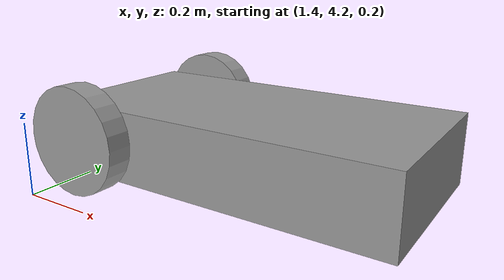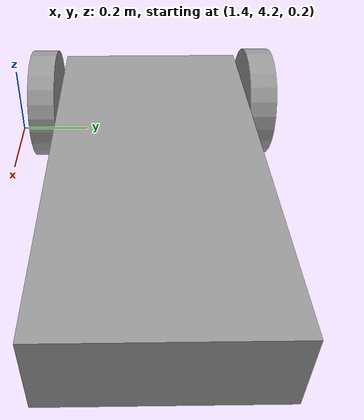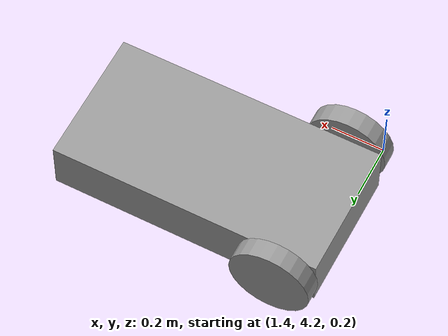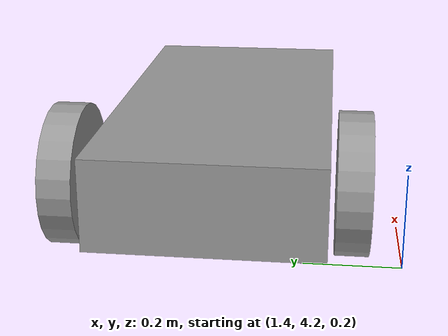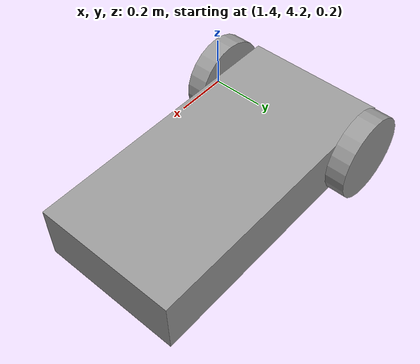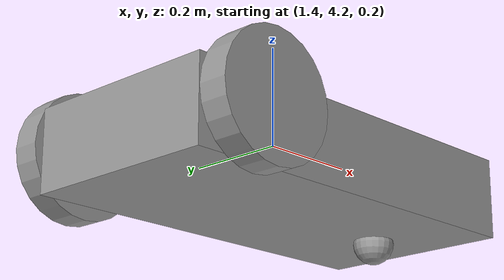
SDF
<?xml version='1.0'?>
<sdf version='1.6'>
  <model name='RobotBase'>
    <link name='link'>
      <inertial>
        <mass>1</mass>
        <inertia>
          <ixx>0.166667</ixx>
          <ixy>0</ixy>
          <ixz>0</ixz>
          <iyy>0.166667</iyy>
          <iyz>0</iyz>
          <izz>0.166667</izz>
        </inertia>
        <pose frame=''>0 0 0 0 -0 0</pose>
      </inertial>
      <self_collide>0</self_collide>
      <enable_wind>0</enable_wind>
      <kinematic>0</kinematic>
      <pose frame=''>1.84831 4.60038 0.325533 0 -0 0</pose>
      <gravity>1</gravity>
      <visual name='visual'>
        <geometry>
          <box>
            <size>1 0.5 0.2</size>
          </box>
        </geometry>
        <material>
          <script>
            <name>Gazebo/Grey</name>
            <uri>file://media/materials/scripts/gazebo.material</uri>
          </script>
          <shader type='vertex'>
            <normal_map>__default__</normal_map>
          </shader>
          <ambient>0.3 0.3 0.3 1</ambient>
          <diffuse>0.7 0.7 0.7 1</diffuse>
          <specular>0 0.91 1 1</specular>
          <emissive>0 0 0 1</emissive>
        </material>
        <pose frame=''>0 0 0 0 -0 0</pose>
        <transparency>0</transparency>
        <cast_shadows>1</cast_shadows>
      </visual>
      <collision name='collision'>
        <laser_retro>0</laser_retro>
        <max_contacts>10</max_contacts>
        <pose frame=''>0 0 0 0 -0 0</pose>
        <geometry>
          <box>
            <size>1.01 0.51 0.21</size>
          </box>
        </geometry>
        <surface>
          <friction>
            <ode>
              <mu>1</mu>
              <mu2>1</mu2>
              <fdir1>0 0 0</fdir1>
              <slip1>0</slip1>
              <slip2>0</slip2>
            </ode>
            <torsional>
              <coefficient>1</coefficient>
              <patch_radius>0</patch_radius>
              <surface_radius>0</surface_radius>
              <use_patch_radius>1</use_patch_radius>
              <ode>
                <slip>0</slip>
              </ode>
            </torsional>
          </friction>
          <bounce>
            <restitution_coefficient>0</restitution_coefficient>
            <threshold>1e+06</threshold>
          </bounce>
          <contact>
            <collide_without_contact>0</collide_without_contact>
            <collide_without_contact_bitmask>1</collide_without_contact_bitmask>
            <collide_bitmask>1</collide_bitmask>
            <ode>
              <soft_cfm>0</soft_cfm>
              <soft_erp>0.2</soft_erp>
              <kp>1e+13</kp>
              <kd>1</kd>
              <max_vel>0.01</max_vel>
              <min_depth>0</min_depth>
            </ode>
            <bullet>
              <split_impulse>1</split_impulse>
              <split_impulse_penetration_threshold>-0.01</split_impulse_penetration_threshold>
              <soft_cfm>0</soft_cfm>
              <soft_erp>0.2</soft_erp>
              <kp>1e+13</kp>
              <kd>1</kd>
            </bullet>
          </contact>
        </surface>
      </collision>
    </link>
    <link name='link_1_clone'>
      <inertial>
        <mass>1</mass>
        <inertia>
          <ixx>0.145833</ixx>
          <ixy>0</ixy>
          <ixz>0</ixz>
          <iyy>0.145833</iyy>
          <iyz>0</iyz>
          <izz>0.125</izz>
        </inertia>
        <pose frame=''>0 0 0 1.5707 -0 0</pose>
      </inertial>
      <pose frame=''>1.48331 4.89441 0.345528 1.5707 -0 0</pose>
      <gravity>1</gravity>
      <self_collide>0</self_collide>
      <kinematic>0</kinematic>
      <enable_wind>0</enable_wind>
      <visual name='visual'>
        <pose frame=''>0 0 0 0 -0 0</pose>
        <geometry>
          <cylinder>
            <radius>0.15</radius>
            <length>0.07</length>
          </cylinder>
        </geometry>
        <material>
          <lighting>1</lighting>
          <script>
            <uri>file://media/materials/scripts/gazebo.material</uri>
            <name>Gazebo/Grey</name>
          </script>
          <shader type='vertex'>
            <normal_map>__default__</normal_map>
          </shader>
          <ambient>0.3 0.3 0.3 1</ambient>
          <diffuse>0.7 0.7 0.7 1</diffuse>
          <specular>0.01 0.01 0.01 1</specular>
          <emissive>0 0 0 1</emissive>
        </material>
        <transparency>0</transparency>
        <cast_shadows>1</cast_shadows>
      </visual>
      <collision name='collision'>
        <laser_retro>0</laser_retro>
        <max_contacts>10</max_contacts>
        <pose frame=''>0 0 0 0 -0 0</pose>
        <geometry>
          <cylinder>
            <radius>0.5</radius>
            <length>1</length>
          </cylinder>
        </geometry>
        <surface>
          <friction>
            <ode>
              <mu>1</mu>
              <mu2>1</mu2>
              <fdir1>0 0 0</fdir1>
              <slip1>0</slip1>
              <slip2>0</slip2>
            </ode>
            <torsional>
              <coefficient>1</coefficient>
              <patch_radius>0</patch_radius>
              <surface_radius>0</surface_radius>
              <use_patch_radius>1</use_patch_radius>
              <ode>
                <slip>0</slip>
              </ode>
            </torsional>
          </friction>
          <bounce>
            <restitution_coefficient>0</restitution_coefficient>
            <threshold>1e+06</threshold>
          </bounce>
          <contact>
            <collide_without_contact>0</collide_without_contact>
            <collide_without_contact_bitmask>1</collide_without_contact_bitmask>
            <collide_bitmask>1</collide_bitmask>
            <ode>
              <soft_cfm>0</soft_cfm>
              <soft_erp>0.2</soft_erp>
              <kp>1e+13</kp>
              <kd>1</kd>
              <max_vel>0.01</max_vel>
              <min_depth>0</min_depth>
            </ode>
            <bullet>
              <split_impulse>1</split_impulse>
              <split_impulse_penetration_threshold>-0.01</split_impulse_penetration_threshold>
              <soft_cfm>0</soft_cfm>
              <soft_erp>0.2</soft_erp>
              <kp>1e+13</kp>
              <kd>1</kd>
            </bullet>
          </contact>
        </surface>
      </collision>
    </link>
    <link name='link_1_clone_clone'>
      <inertial>
        <mass>1</mass>
        <inertia>
          <ixx>0.145833</ixx>
          <ixy>0</ixy>
          <ixz>0</ixz>
          <iyy>0.145833</iyy>
          <iyz>0</iyz>
          <izz>0.125</izz>
        </inertia>
        <pose frame=''>0 0 0 1.5707 -0 0</pose>
      </inertial>
      <pose frame=''>1.48728 4.30211 0.345533 1.5707 -0 0</pose>
      <gravity>1</gravity>
      <self_collide>0</self_collide>
      <kinematic>0</kinematic>
      <enable_wind>0</enable_wind>
      <visual name='visual'>
        <pose frame=''>0 0 0 0 -0 0</pose>
        <geometry>
          <cylinder>
            <radius>0.15</radius>
            <length>0.07</length>
          </cylinder>
        </geometry>
        <material>
          <lighting>1</lighting>
          <script>
            <uri>file://media/materials/scripts/gazebo.material</uri>
            <name>Gazebo/Grey</name>
          </script>
          <shader type='vertex'>
            <normal_map>__default__</normal_map>
          </shader>
          <ambient>0.3 0.3 0.3 1</ambient>
          <diffuse>0.7 0.7 0.7 1</diffuse>
          <specular>0.01 0.01 0.01 1</specular>
          <emissive>0 0 0 1</emissive>
        </material>
        <transparency>0</transparency>
        <cast_shadows>1</cast_shadows>
      </visual>
      <collision name='collision'>
        <laser_retro>0</laser_retro>
        <max_contacts>10</max_contacts>
        <pose frame=''>0 0 0 0 -0 0</pose>
        <geometry>
          <cylinder>
            <radius>0.5</radius>
            <length>1</length>
          </cylinder>
        </geometry>
        <surface>
          <friction>
            <ode>
              <mu>1</mu>
              <mu2>1</mu2>
              <fdir1>0 0 0</fdir1>
              <slip1>0</slip1>
              <slip2>0</slip2>
            </ode>
            <torsional>
              <coefficient>1</coefficient>
              <patch_radius>0</patch_radius>
              <surface_radius>0</surface_radius>
              <use_patch_radius>1</use_patch_radius>
              <ode>
                <slip>0</slip>
              </ode>
            </torsional>
          </friction>
          <bounce>
            <restitution_coefficient>0</restitution_coefficient>
            <threshold>1e+06</threshold>
          </bounce>
          <contact>
            <collide_without_contact>0</collide_without_contact>
            <collide_without_contact_bitmask>1</collide_without_contact_bitmask>
            <collide_bitmask>1</collide_bitmask>
            <ode>
              <soft_cfm>0</soft_cfm>
              <soft_erp>0.2</soft_erp>
              <kp>1e+13</kp>
              <kd>1</kd>
              <max_vel>0.01</max_vel>
              <min_depth>0</min_depth>
            </ode>
            <bullet>
              <split_impulse>1</split_impulse>
              <split_impulse_penetration_threshold>-0.01</split_impulse_penetration_threshold>
              <soft_cfm>0</soft_cfm>
              <soft_erp>0.2</soft_erp>
              <kp>1e+13</kp>
              <kd>1</kd>
            </bullet>
          </contact>
        </surface>
      </collision>
    </link>
    <link name='link_2'>
      <inertial>
        <mass>1</mass>
        <inertia>
          <ixx>0.1</ixx>
          <ixy>0</ixy>
          <ixz>0</ixz>
          <iyy>0.1</iyy>
          <iyz>0</iyz>
          <izz>0.1</izz>
        </inertia>
        <pose frame=''>0 0 0 0 -0 0</pose>
      </inertial>
      <pose frame=''>2.16985 4.58418 0.216026 0 -0 0</pose>
      <gravity>1</gravity>
      <self_collide>0</self_collide>
      <kinematic>0</kinematic>
      <enable_wind>0</enable_wind>
      <visual name='visual'>
        <pose frame=''>0 0 0 0 -0 0</pose>
        <geometry>
          <sphere>
            <radius>0.05</radius>
          </sphere>
        </geometry>
        <material>
          <lighting>1</lighting>
          <script>
            <uri>file://media/materials/scripts/gazebo.material</uri>
            <name>Gazebo/Grey</name>
          </script>
          <shader type='vertex'>
            <normal_map>__default__</normal_map>
          </shader>
          <ambient>0.3 0.3 0.3 1</ambient>
          <diffuse>0.7 0.7 0.7 1</diffuse>
          <specular>0.01 0.01 0.01 1</specular>
          <emissive>0 0 0 1</emissive>
        </material>
        <transparency>0</transparency>
        <cast_shadows>1</cast_shadows>
      </visual>
      <collision name='collision'>
        <laser_retro>0</laser_retro>
        <max_contacts>10</max_contacts>
        <pose frame=''>0 0 0 0 -0 0</pose>
        <geometry>
          <sphere>
            <radius>0.051</radius>
          </sphere>
        </geometry>
        <surface>
          <friction>
            <ode>
              <mu>1</mu>
              <mu2>1</mu2>
              <fdir1>0 0 0</fdir1>
              <slip1>0</slip1>
              <slip2>0</slip2>
            </ode>
            <torsional>
              <coefficient>1</coefficient>
              <patch_radius>0</patch_radius>
              <surface_radius>0</surface_radius>
              <use_patch_radius>1</use_patch_radius>
              <ode>
                <slip>0</slip>
              </ode>
            </torsional>
          </friction>
          <bounce>
            <restitution_coefficient>0</restitution_coefficient>
            <threshold>1e+06</threshold>
          </bounce>
          <contact>
            <collide_without_contact>0</collide_without_contact>
            <collide_without_contact_bitmask>1</collide_without_contact_bitmask>
            <collide_bitmask>1</collide_bitmask>
            <ode>
              <soft_cfm>0</soft_cfm>
              <soft_erp>0.2</soft_erp>
              <kp>1e+13</kp>
              <kd>1</kd>
              <max_vel>0.01</max_vel>
              <min_depth>0</min_depth>
            </ode>
            <bullet>
              <split_impulse>1</split_impulse>
              <split_impulse_penetration_threshold>-0.01</split_impulse_penetration_threshold>
              <soft_cfm>0</soft_cfm>
              <soft_erp>0.2</soft_erp>
              <kp>1e+13</kp>
              <kd>1</kd>
            </bullet>
          </contact>
        </surface>
      </collision>
    </link>
    <joint name='link_JOINT_5' type='revolute'>
      <parent>link</parent>
      <child>link_1_clone_clone</child>
      <pose frame=''>0 0 0 0 -0 0</pose>
      <axis>
        <xyz>1 0 0</xyz>
        <use_parent_model_frame>0</use_parent_model_frame>
        <limit>
          <lower>-1.79769e+308</lower>
          <upper>1.79769e+308</upper>
          <effort>-1</effort>
          <velocity>-1</velocity>
        </limit>
        <dynamics>
          <spring_reference>0</spring_reference>
          <spring_stiffness>0</spring_stiffness>
          <damping>0</damping>
        </dynamics>
      </axis>
      <physics>
        <ode>
          <limit>
            <cfm>0</cfm>
            <erp>0.2</erp>
          </limit>
          <suspension>
            <cfm>0</cfm>
            <erp>0.2</erp>
          </suspension>
        </ode>
      </physics>
    </joint>
    <joint name='link_JOINT_6' type='revolute'>
      <parent>link</parent>
      <child>link_1_clone</child>
      <pose frame=''>0 0 0 0 -0 0</pose>
      <axis>
        <xyz>1 0 0</xyz>
        <use_parent_model_frame>0</use_parent_model_frame>
        <limit>
          <lower>-1.79769e+308</lower>
          <upper>1.79769e+308</upper>
          <effort>-1</effort>
          <velocity>-1</velocity>
        </limit>
        <dynamics>
          <spring_reference>0</spring_reference>
          <spring_stiffness>0</spring_stiffness>
          <damping>0</damping>
        </dynamics>
      </axis>
      <physics>
        <ode>
          <limit>
            <cfm>0</cfm>
            <erp>0.2</erp>
          </limit>
          <suspension>
            <cfm>0</cfm>
            <erp>0.2</erp>
          </suspension>
        </ode>
      </physics>
    </joint>
    <joint name='link_JOINT_7' type='ball'>
      <parent>link</parent>
      <child>link_2</child>
      <pose frame=''>0 0 0 0 -0 0</pose>
      <physics>
        <ode>
          <limit>
            <cfm>0</cfm>
            <erp>0.2</erp>
          </limit>
          <suspension>
            <cfm>0</cfm>
            <erp>0.2</erp>
          </suspension>
        </ode>
      </physics>
    </joint>
    <static>0</static>
    <allow_auto_disable>1</allow_auto_disable>
  </model>
</sdf>
